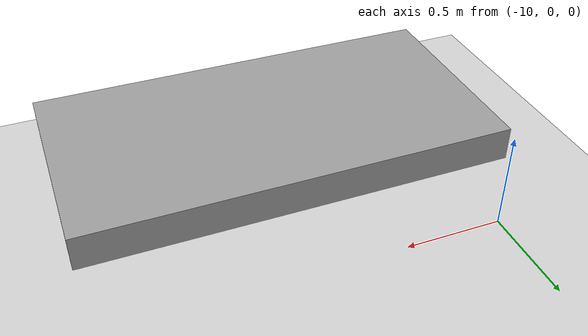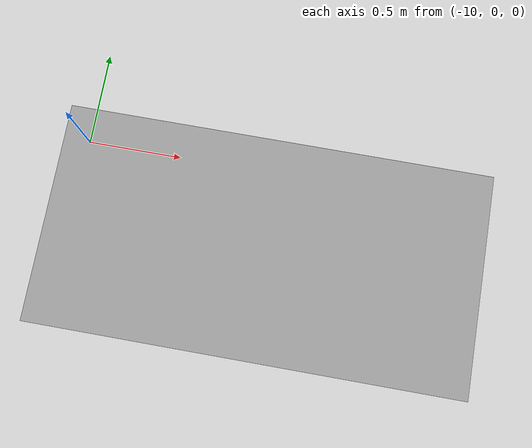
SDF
<sdf version="1.7">
 <world name="default">
  <light name="sun" type="directional">
   <pose>0 0 10 0 -0 0</pose>
   <diffuse>0.8 0.8 0.8 1</diffuse>
   <specular>0.2 0.2 0.2 1</specular>
   <attenuation>
    <range>1000</range>
    <constant>0.9</constant>
    <linear>0.01</linear>
    <quadratic>0.001</quadratic>
   </attenuation>
   <direction>-0.5 0.1 -0.9</direction>
   <spot><inner_angle>0</inner_angle><outer_angle>0</outer_angle><falloff>0</falloff></spot>
  </light>
  <model name="ground_plane">
   <static>1</static>
   <link name="link">
    <collision name="collision">
     <geometry><plane><normal>0 0 1</normal><size>1 1</size></plane></geometry>
    </collision>
    <visual name="visual">
     <geometry><plane><normal>0 0 1</normal><size>100 100</size></plane></geometry>
     <material>
      <ambient>0.8 0.8 0.8 1</ambient>
      <diffuse>0.8 0.8 0.8 1</diffuse>
      <specular>0.8 0.8 0.8 1</specular>
     </material>
     <surface><contact><collide_bitmask>0x01</collide_bitmask></contact></surface>
    </visual>
   </link>
  </model>
  <gravity>0 0 -9.8</gravity>
  <magnetic_field>6e-06 2.3e-05 -4.2e-05</magnetic_field>
  <atmosphere type="adiabatic"/>
  <physics type="ode">
   <max_step_size>0.001</max_step_size>
   <real_time_factor>1</real_time_factor>
   <real_time_update_rate>1000</real_time_update_rate>
  </physics>
  <scene><ambient>0.4 0.4 0.4 1</ambient><background>0.7 0.7 0.7 1</background><shadows>1</shadows></scene>
  <audio><device>default</device></audio>
  <spherical_coordinates>
   <surface_model>EARTH_WGS84</surface_model>
   <latitude_deg>0</latitude_deg>
   <longitude_deg>0</longitude_deg>
   <elevation>0</elevation>
   <heading_deg>0</heading_deg>
  </spherical_coordinates>
  <model name="t1">
   <link name="link_0">
    <inertial>
     <mass>0.313761</mass>
     <inertia>
      <ixx>0.0268159</ixx>
      <ixy>0</ixy>
      <ixz>0</ixz>
      <iyy>0.101261</iyy>
      <iyz>0</iyz>
      <izz>0.126739</izz>
     </inertia>
    </inertial>
    <visual name="visual">
     <geometry><box><size>1.96143 1 0.159969</size></box></geometry>
     <material>
      <lighting>1</lighting>
      <script><uri>file://media/materials/scripts/gazebo.material</uri><name>Gazebo/Grey</name></script>
      <shader type="pixel"/>
     </material>
    </visual>
    <collision name="collision">
     <geometry><box><size>1.96143 1 0.159969</size></box></geometry>
     <surface>
      <friction>
       <ode><mu>1</mu><mu2>1</mu2><fdir1>0 0 0</fdir1><slip1>0</slip1><slip2>0</slip2></ode>
       <torsional>
        <coefficient>1</coefficient>
        <patch_radius>0</patch_radius>
        <surface_radius>0</surface_radius>
        <use_patch_radius>1</use_patch_radius>
        <ode><slip>0</slip></ode>
       </torsional>
      </friction>
      <bounce><restitution_coefficient>0</restitution_coefficient><threshold>1e+06</threshold></bounce>
      <contact>
       <collide_without_contact>0</collide_without_contact>
       <collide_without_contact_bitmask>1</collide_without_contact_bitmask>
       <collide_bitmask>1</collide_bitmask>
       <ode>
        <soft_cfm>0</soft_cfm>
        <soft_erp>0.2</soft_erp>
        <kp>1e+13</kp>
        <kd>1</kd>
        <max_vel>0.01</max_vel>
        <min_depth>0</min_depth>
       </ode>
       <bullet>
        <split_impulse>1</split_impulse>
        <split_impulse_penetration_threshold>-0.01</split_impulse_penetration_threshold>
        <soft_cfm>0</soft_cfm>
        <soft_erp>0.2</soft_erp>
        <kp>1e+13</kp>
        <kd>1</kd>
       </bullet>
      </contact>
     </surface>
    </collision>
   </link>
   <static>0</static>
   <pose>-8.97393 -0.483747 0.5 0 -0 0</pose>
  </model>
 </world>
</sdf>
